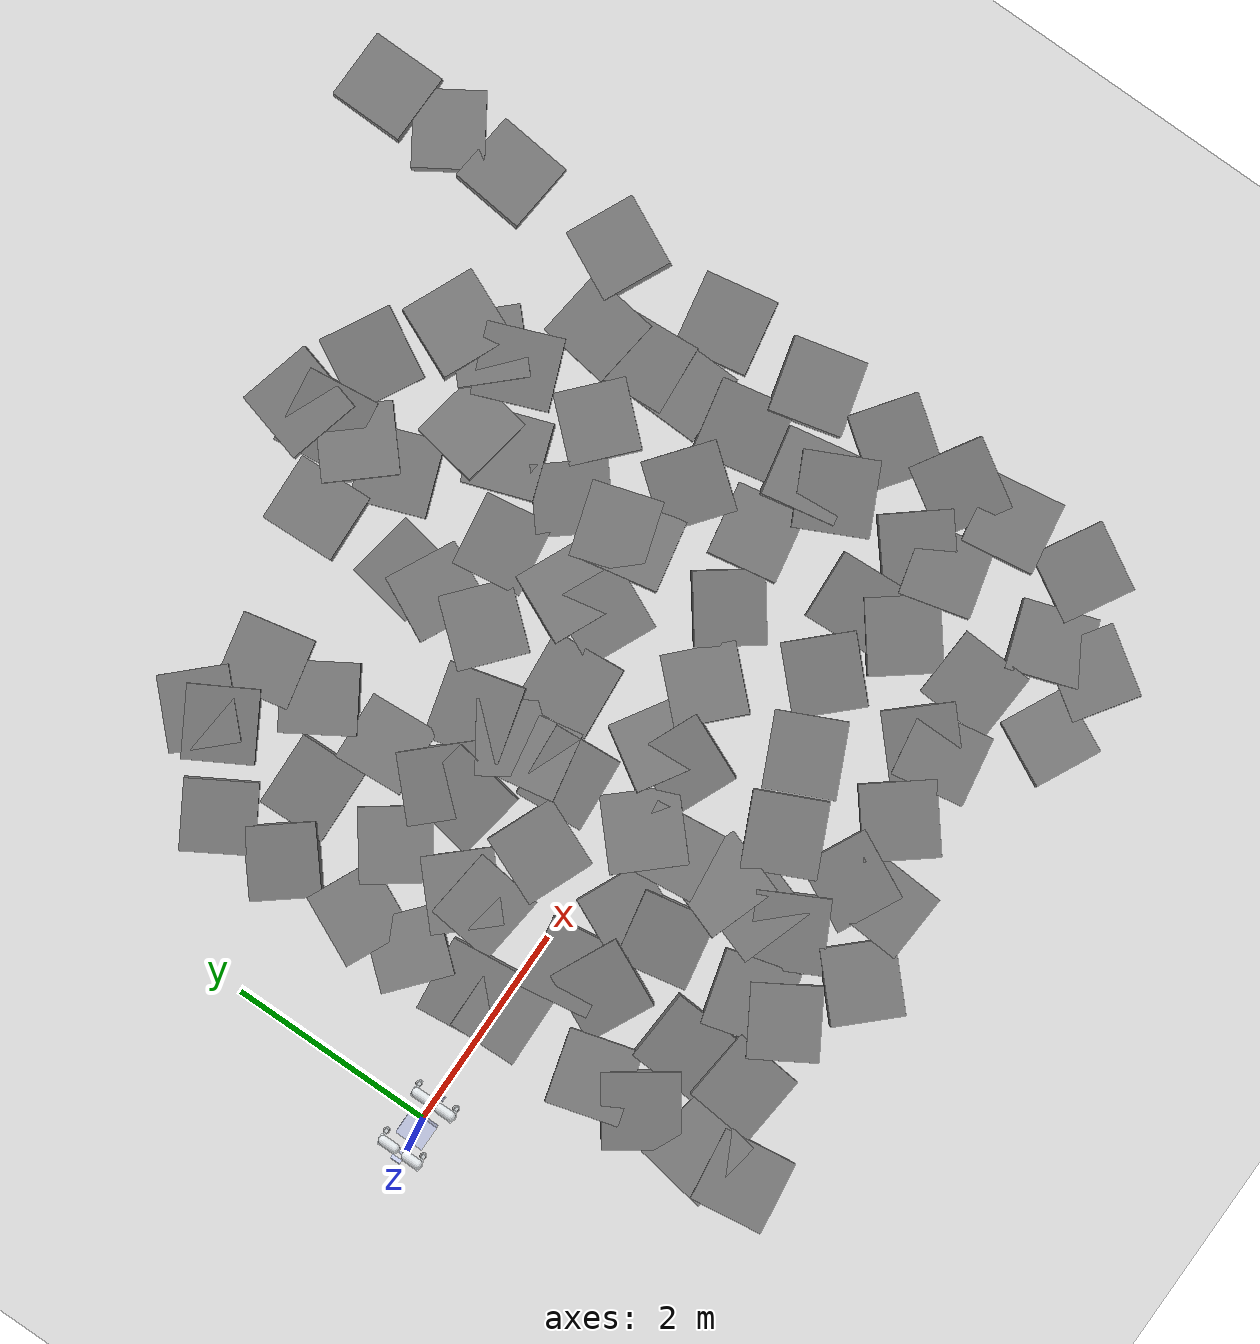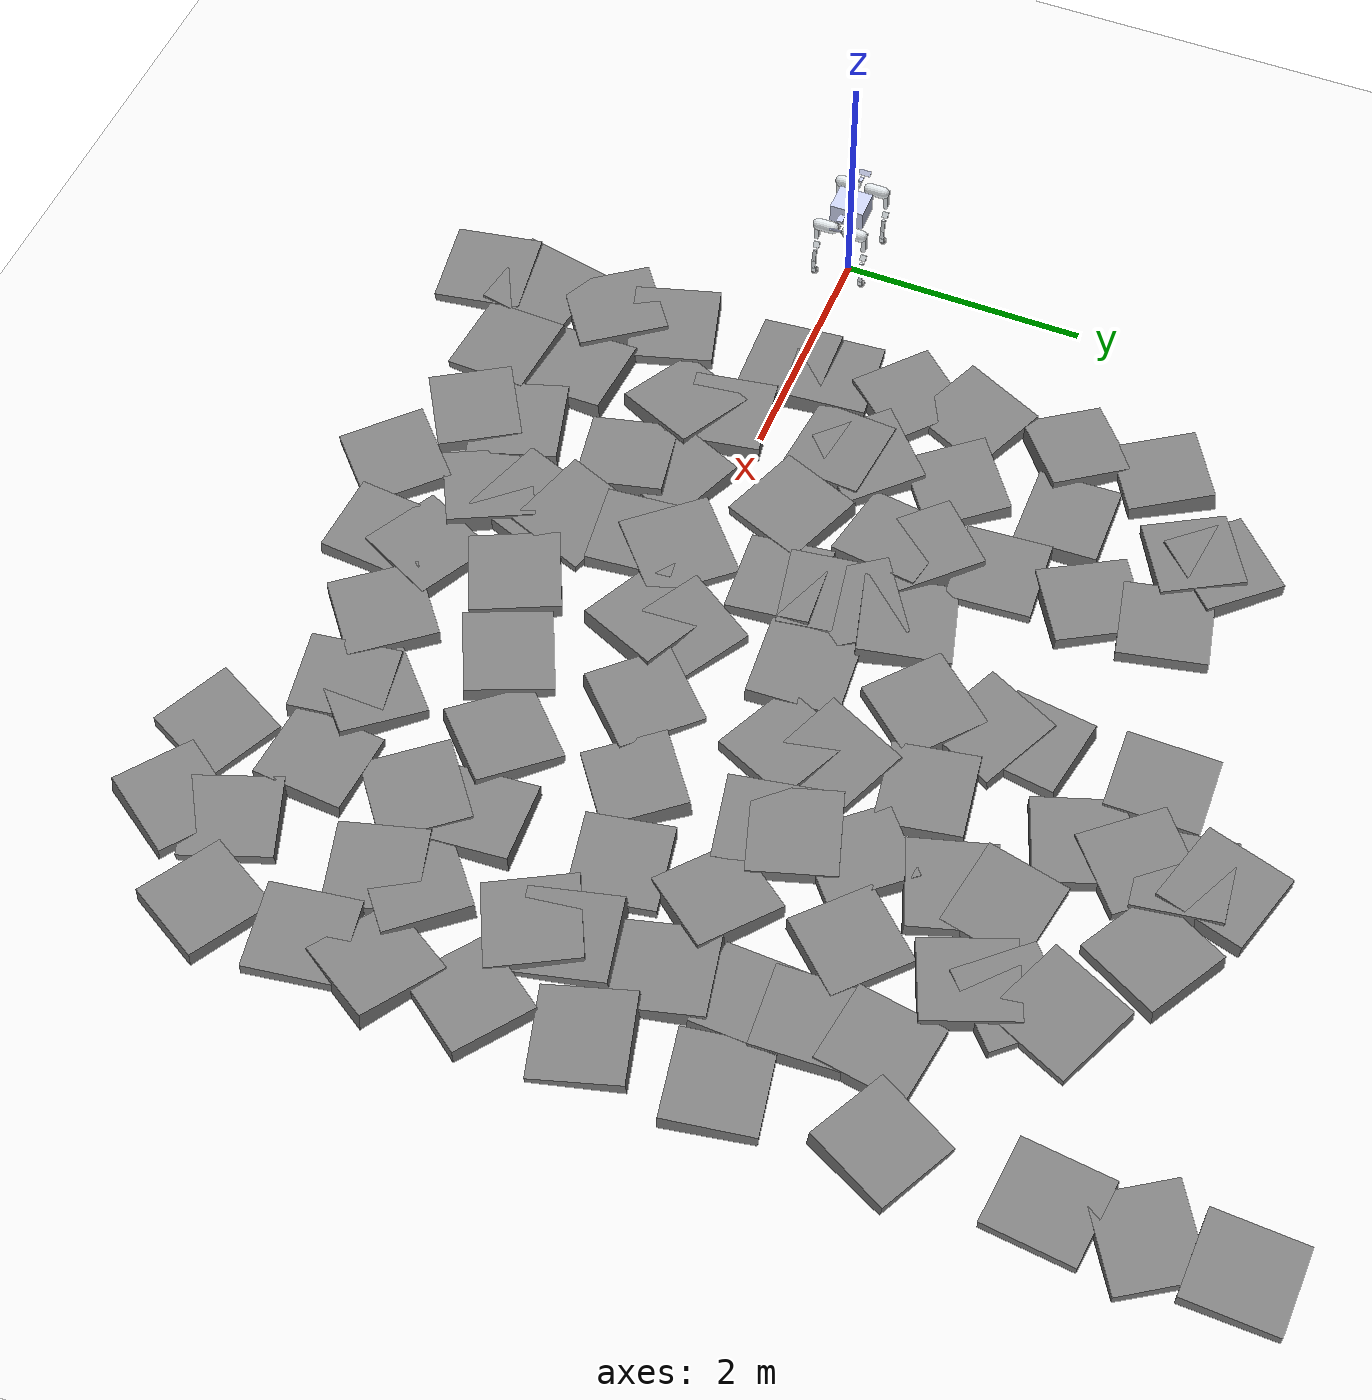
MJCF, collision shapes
<mujoco model="a2_random_boxes">
      <include file="a2.xml"/>

      <statistic center="0 0 0.1" extent="0.8"/>

      <visual>
            <headlight diffuse="0.4 0.4 0.4" ambient="0.25 0.25 0.25" specular="0.25 0.25 0.25"/>
            <rgba haze="0.99 0.99 0.99 1"/>
            <global azimuth="-130" elevation="-20"/>
      </visual>
      <asset>
            <texture
                  type="skybox"
                  builtin="gradient"
                  rgb1="0.99 0.99 0.99"
                  rgb2="0.99 0.99 0.99"
                  width="512"
                  height="3072"
            />
            <texture
                  type="2d"
                  name="groundplane"
                  builtin="checker"
                  mark="edge"
                  rgb1="0.93 0.93 0.93"
                  rgb2="0.93 0.93 0.93"
                  markrgb="0 0 0"
                  width="250"
                  height="250"
            />
            <material name="groundplane" texture="groundplane" texuniform="true" texrepeat="5 5" reflectance="0.0"/>
      </asset>

      <worldbody>
            <light pos="0 0 5.0" dir="0 0 -1" directional="true" castshadow="false"/>

            <geom name="floor" size="0 0 0.05" type="plane" material="groundplane"/>

            <geom size="0.354678 0.358708 0.0896548" pos="1.2 -2.71166 0.02" quat="0.0652341 -0.0319302 0.0254488 -0.997034" type="box"/>
            <geom size="0.356488 0.365869 0.0788364" pos="1.2 -2.21978 0.02" quat="0.759952 -0.0193772 0.0245563 0.649226" type="box"/>
            <geom size="0.364622 0.35751 0.0906182" pos="1.2 -1.58577 0.02" quat="0.458906 -0.00516719 -0.0375923 0.887674" type="box"/>
            <geom size="0.354122 0.35046 0.0929774" pos="1.2 -1.06653 0.02" quat="0.990294 0.00586796 0.0316036 0.135219" type="box"/>
            <geom size="0.335666 0.343025 0.0812434" pos="1.2 -0.047247 0.02" quat="0.699206 0.0552936 -0.00835086 0.71273" type="box"/>
            <geom size="0.339463 0.36249 0.0864424" pos="1.2 0.317769 0.02" quat="0.745624 0.00539253 -0.0321707 -0.665567" type="box"/>
            <geom size="0.346239 0.335771 0.0967117" pos="1.2 0.974073 0.02" quat="0.938524 -0.0367319 0.00108768 -0.343253" type="box"/>
            <geom size="0.361414 0.341298 0.0918175" pos="1.2 1.53126 0.02" quat="0.843035 0.0321216 0.024535 0.536338" type="box"/>
            <geom size="0.335286 0.343191 0.0859845" pos="1.2 2.36775 0.02" quat="0.902709 0.00500436 -0.053257 -0.426913" type="box"/>
            <geom size="0.344622 0.334008 0.0979981" pos="1.2 3.08121 0.02" quat="0.867245 0.041568 0.0197942 -0.495747" type="box"/>
            <geom size="0.353424 0.341678 0.0853316" pos="1.9 -2.23449 0.02" quat="0.0506356 0.0172853 -0.0483532 0.997396" type="box"/>
            <geom size="0.34913 0.342748 0.0801555" pos="1.9 -1.59372 0.02" quat="0.998266 0.0473363 -0.017491 -0.0302989" type="box"/>
            <geom size="0.34364 0.350693 0.0913967" pos="1.9 -0.675116 0.02" quat="0.974087 0.0249417 -0.0498964 -0.219185" type="box"/>
            <geom size="0.353011 0.333798 0.0864206" pos="1.9 -0.315923 0.02" quat="0.996769 0.00784916 -0.019476 0.0775293" type="box"/>
            <geom size="0.334267 0.344324 0.0811139" pos="1.9 0.636574 0.02" quat="0.663122 0.00759046 0.0495771 -0.746829" type="box"/>
            <geom size="0.336241 0.358561 0.0890266" pos="1.9 0.885202 0.02" quat="0.40212 0.0362004 -0.00519903 0.914856" type="box"/>
            <geom size="0.341201 0.351484 0.0837107" pos="1.9 1.61867 0.02" quat="0.891391 0.00850887 0.0430055 -0.45111" type="box"/>
            <geom size="0.33302 0.366726 0.091285" pos="1.9 2.52752 0.02" quat="0.716961 0.025214 -0.0159079 -0.696475" type="box"/>
            <geom size="0.337699 0.347496 0.0939288" pos="1.9 3.54656 0.02" quat="0.50233 -0.0146459 -0.0372062 0.863751" type="box"/>
            <geom size="0.335654 0.360502 0.0911121" pos="1.9 3.78412 0.02" quat="0.920172 -0.00357184 -0.0312743 -0.390248" type="box"/>
            <geom size="0.333574 0.348359 0.0950439" pos="2.6 -2.20095 0.02" quat="0.492231 0.0128201 -0.000669289 0.87037" type="box"/>
            <geom size="0.359895 0.362198 0.0919442" pos="2.6 -1.82491 0.02" quat="0.990756 0.0263184 0.0151926 0.13221" type="box"/>
            <geom size="0.348548 0.350459 0.089338" pos="2.6 -0.882231 0.02" quat="0.994556 0.0372519 -0.0291963 0.0928359" type="box"/>
            <geom size="0.348484 0.347091 0.0813035" pos="2.6 -0.476281 0.02" quat="0.213481 0.0361536 -0.0243802 0.975973" type="box"/>
            <geom size="0.352582 0.342784 0.093094" pos="2.6 0.508585 0.02" quat="0.831823 0.0335048 0.00443074 0.554011" type="box"/>
            <geom size="0.34627 0.362757 0.0871507" pos="2.6 1.35291 0.02" quat="0.0845878 -0.0348768 -0.0213519 0.995577" type="box"/>
            <geom size="0.339962 0.36385 0.0998801" pos="2.6 1.60211 0.02" quat="0.370094 0.0271889 0.0305026 -0.928095" type="box"/>
            <geom size="0.338962 0.334916 0.0843823" pos="2.6 2.20558 0.02" quat="0.682859 0.031337 0.0272987 0.729367" type="box"/>
            <geom size="0.333355 0.362489 0.0847502" pos="2.6 2.94372 0.02" quat="0.275021 -0.00811829 -0.0240645 -0.961103" type="box"/>
            <geom size="0.352068 0.336788 0.0870109" pos="2.6 3.54017 0.02" quat="0.77751 -0.00483518 0.00535218 -0.628829" type="box"/>
            <geom size="0.360265 0.34693 0.082794" pos="3.3 -2.57122 0.02" quat="0.929187 0.029074 0.0189687 0.367977" type="box"/>
            <geom size="0.354015 0.345381 0.0963107" pos="3.3 -1.77017 0.02" quat="0.237504 0.0342253 -0.00473834 -0.970772" type="box"/>
            <geom size="0.365348 0.357255 0.0845119" pos="3.3 -1.37691 0.02" quat="0.986766 -0.0379353 0.00187736 -0.157638" type="box"/>
            <geom size="0.334136 0.365843 0.0975329" pos="3.3 -1.03014 0.02" quat="0.812501 -0.000369101 0.0567499 0.580191" type="box"/>
            <geom size="0.336489 0.345521 0.0955185" pos="3.3 -0.492389 0.02" quat="0.998053 -0.0186523 0.0127422 0.0581372" type="box"/>
            <geom size="0.363931 0.365425 0.0871527" pos="3.3 -0.162213 0.02" quat="0.93154 -0.0240255 0.0332841 0.361315" type="box"/>
            <geom size="0.335544 0.359939 0.0854125" pos="3.3 0.683015 0.02" quat="0.731599 0.0319146 0.0219907 -0.680632" type="box"/>
            <geom size="0.334482 0.342912 0.0938826" pos="3.3 1.0608 0.02" quat="0.994675 -0.0337491 0.0272725 0.093481" type="box"/>
            <geom size="0.335392 0.349373 0.0903187" pos="3.3 1.30254 0.02" quat="0.473372 0.0352887 0.00328001 0.88015" type="box"/>
            <geom size="0.366218 0.366639 0.0907957" pos="3.3 1.71047 0.02" quat="0.990801 -0.0411533 -0.0209012 0.127209" type="box"/>
            <geom size="0.337514 0.356996 0.0800177" pos="4 -2.35049 0.02" quat="0.99926 -0.0242953 0.0017573 -0.0297516" type="box"/>
            <geom size="0.35355 0.335905 0.0850661" pos="4 -1.96591 0.02" quat="0.528026 0.0159756 -0.0160628 -0.848926" type="box"/>
            <geom size="0.354043 0.363543 0.0900548" pos="4 -1.23044 0.02" quat="0.843119 0.010908 -0.00635495 -0.537578" type="box"/>
            <geom size="0.344493 0.337035 0.0932492" pos="4 -0.127273 0.02" quat="0.549308 0.0333683 -0.0301667 -0.834409" type="box"/>
            <geom size="0.332842 0.340403 0.0816387" pos="4 0.189606 0.02" quat="0.872441 0.0155629 0.0556251 0.485294" type="box"/>
            <geom size="0.359487 0.358148 0.0806559" pos="4 1.14433 0.02" quat="0.67717 -0.0297407 0.00803749 0.735182" type="box"/>
            <geom size="0.342038 0.352328 0.0891775" pos="4 2.10071 0.02" quat="0.346148 0.00751983 0.00326024 0.938144" type="box"/>
            <geom size="0.333806 0.356259 0.0891892" pos="4 2.62228 0.02" quat="0.524652 -0.0112595 0.0400123 -0.850301" type="box"/>
            <geom size="0.334875 0.333807 0.0909809" pos="4 2.97396 0.02" quat="0.090362 0.0200632 -0.0358422 0.995062" type="box"/>
            <geom size="0.333687 0.366864 0.0866356" pos="4 3.94708 0.02" quat="0.020248 -0.00811981 -0.0327082 -0.999227" type="box"/>
            <geom size="0.355994 0.357222 0.0974128" pos="4.7 -2.01145 0.02" quat="0.943493 0.00397657 -0.00466918 0.331334" type="box"/>
            <geom size="0.363729 0.343319 0.0817165" pos="4.7 -0.9726 0.02" quat="0.216405 0.0080518 -0.0239138 -0.975977" type="box"/>
            <geom size="0.351307 0.341265 0.0800383" pos="4.7 0.137803 0.02" quat="0.926282 -0.0499612 -0.0150184 -0.373202" type="box"/>
            <geom size="0.352663 0.34269 0.0930078" pos="4.7 1.26632 0.02" quat="0.976574 0.0135466 -0.00261269 -0.214737" type="box"/>
            <geom size="0.353988 0.36687 0.0943904" pos="4.7 1.63937 0.02" quat="0.541575 -0.0444384 0.0297327 -0.83895" type="box"/>
            <geom size="0.336508 0.360426 0.0929448" pos="4.7 2.37891 0.02" quat="0.653129 0.0163423 -0.0138705 0.756943" type="box"/>
            <geom size="0.359172 0.361896 0.0810459" pos="4.7 3.54596 0.02" quat="0.57204 -0.0113243 0.00919481 0.820096" type="box"/>
            <geom size="0.360775 0.342092 0.0848551" pos="4.7 3.98983 0.02" quat="0.910203 -0.0353399 0.013891 -0.412417" type="box"/>
            <geom size="0.34632 0.366458 0.0847792" pos="4.7 4.3363 0.02" quat="0.747172 0.0505765 -0.00886806 -0.662644" type="box"/>
            <geom size="0.360122 0.364323 0.097085" pos="4.7 4.62611 0.02" quat="0.606931 -0.00244147 -0.028534 -0.794239" type="box"/>
            <geom size="0.339307 0.354053 0.0991393" pos="5.4 -1.99562 0.02" quat="0.0861855 0.00790942 -0.0184931 -0.996076" type="box"/>
            <geom size="0.342828 0.338917 0.0791816" pos="5.4 -1.78216 0.02" quat="0.913638 0.00354878 -0.0520292 -0.40317" type="box"/>
            <geom size="0.350327 0.349284 0.0793987" pos="5.4 -0.696238 0.02" quat="0.925502 -0.0389156 -0.0339425 0.375207" type="box"/>
            <geom size="0.346925 0.33384 0.0805184" pos="5.4 0.365056 0.02" quat="0.313966 0.0162675 0.0493532 -0.948011" type="box"/>
            <geom size="0.364396 0.346531 0.0850257" pos="5.4 1.40655 0.02" quat="0.634414 0.0127202 0.0339293 0.772143" type="box"/>
            <geom size="0.362053 0.340205 0.0964936" pos="5.4 1.61171 0.02" quat="0.988713 0.00190482 0.0114558 0.149368" type="box"/>
            <geom size="0.333366 0.356651 0.0825036" pos="5.4 2.10753 0.02" quat="0.94012 0.0255222 -0.0136144 0.339614" type="box"/>
            <geom size="0.343799 0.366345 0.0830142" pos="5.4 2.81237 0.02" quat="0.814463 -0.035342 -0.0234585 -0.578663" type="box"/>
            <geom size="0.358491 0.332685 0.0807223" pos="5.4 3.21079 0.02" quat="0.99434 -0.0406809 0.0422377 -0.0885895" type="box"/>
            <geom size="0.365167 0.355411 0.0960704" pos="5.4 4.3156 0.02" quat="0.507703 0.0253923 0.0136717 -0.86105" type="box"/>
            <geom size="0.332648 0.335073 0.0816439" pos="6.1 -2.70408 0.02" quat="0.227359 0.0292626 0.0385252 0.972608" type="box"/>
            <geom size="0.346563 0.358086 0.0929296" pos="6.1 -1.87002 0.02" quat="0.998955 -0.0256111 -0.0265803 -0.0269456" type="box"/>
            <geom size="0.358907 0.347799 0.0875046" pos="6.1 -1.07574 0.02" quat="0.945481 0.0252224 -0.0048367 0.324662" type="box"/>
            <geom size="0.342332 0.358486 0.0852868" pos="6.1 -0.579977 0.02" quat="0.998891 0.0264887 -0.0266282 0.0283753" type="box"/>
            <geom size="0.339346 0.351711 0.0833436" pos="6.1 0.544706 0.02" quat="0.64033 0.0190141 0.0204006 0.767594" type="box"/>
            <geom size="0.357607 0.337918 0.0945795" pos="6.1 1.2923 0.02" quat="0.327698 -0.0414204 -0.018753 0.943688" type="box"/>
            <geom size="0.3403 0.339945 0.0924872" pos="6.1 2.30616 0.02" quat="0.405146 -0.0125868 -0.0201492 -0.913943" type="box"/>
            <geom size="0.341783 0.36692 0.0978317" pos="6.1 3.18711 0.02" quat="0.982501 -0.00200289 -0.0171298 0.185456" type="box"/>
            <geom size="0.339121 0.334077 0.0790374" pos="6.1 3.50458 0.02" quat="0.368136 -0.0305345 -0.0294672 -0.928803" type="box"/>
            <geom size="0.365643 0.366709 0.0985355" pos="6.1 3.85607 0.02" quat="0.204082 0.04858 0.0200244 0.977543" type="box"/>
            <geom size="0.355135 0.333523 0.0952333" pos="6.8 -2.6874 0.02" quat="0.4683 -0.0250365 -0.0572662 -0.881356" type="box"/>
            <geom size="0.333364 0.361002 0.0841948" pos="6.8 -2.22898 0.02" quat="0.161992 -0.0377871 0.0191606 -0.985882" type="box"/>
            <geom size="0.345343 0.344725 0.0860352" pos="6.8 -1.06201 0.02" quat="0.12633 -0.0208251 0.0171577 -0.991621" type="box"/>
            <geom size="0.363884 0.345565 0.0929311" pos="6.8 -0.750571 0.02" quat="0.337723 0.0228113 0.0281954 -0.940547" type="box"/>
            <geom size="0.360906 0.359784 0.0981111" pos="6.8 0.163579 0.02" quat="0.52928 0.0239292 -0.0358347 0.847352" type="box"/>
            <geom size="0.340803 0.3607 0.0988377" pos="6.8 0.440137 0.02" quat="0.992844 0.0431845 0.0542106 0.097251" type="box"/>
            <geom size="0.36404 0.360975 0.0866045" pos="6.8 1.18428 0.02" quat="0.993573 0.0484608 -0.00649486 0.102088" type="box"/>
            <geom size="0.34801 0.3334 0.0868067" pos="6.8 1.82124 0.02" quat="0.99985 -0.00808118 -0.00936224 -0.0121525" type="box"/>
            <geom size="0.341958 0.366414 0.0916521" pos="6.8 2.27429 0.02" quat="0.0336503 0.0156748 -0.019894 -0.999113" type="box"/>
            <geom size="0.34048 0.353592 0.0839161" pos="6.8 2.78706 0.02" quat="0.0676876 -0.0148025 0.024145 0.997305" type="box"/>
            <geom size="0.345322 0.353147 0.0953584" pos="7.5 -2.08615 0.02" quat="0.864319 -0.0154579 -0.00875528 0.50263" type="box"/>
            <geom size="0.348504 0.355258 0.0897459" pos="7.5 -1.30978 0.02" quat="0.996714 -0.00852771 0.0211766 0.0777161" type="box"/>
            <geom size="0.360977 0.352154 0.0919536" pos="7.5 -0.734571 0.02" quat="0.274492 -0.0480006 -0.0152596 0.960269" type="box"/>
            <geom size="0.339904 0.361235 0.0812563" pos="7.5 -0.0101444 0.02" quat="0.95015 0.0254238 -0.0100935 -0.310591" type="box"/>
            <geom size="0.363075 0.355135 0.0859519" pos="7.5 0.854535 0.02" quat="0.125317 -0.0421702 0.0438916 -0.990248" type="box"/>
            <geom size="0.352644 0.364296 0.094377" pos="7.5 1.85761 0.02" quat="0.640287 -0.0170853 0.0118916 0.767853" type="box"/>
            <geom size="0.358622 0.346047 0.0915758" pos="7.5 3.04778 0.02" quat="0.846414 -0.0481847 0.0274869 0.529628" type="box"/>
            <geom size="0.362359 0.344544 0.0931228" pos="7.5 4.24261 0.02" quat="0.740763 0.0281308 0.0334315 0.670345" type="box"/>
            <geom size="0.365172 0.333489 0.0885586" pos="7.5 4.92962 0.02" quat="0.282147 -0.0375309 0.00560447 -0.958621" type="box"/>
            <geom size="0.34329 0.364698 0.0939696" pos="7.5 5.60445 0.02" quat="0.99929 -0.0220652 0.0294936 -0.00789042" type="box"/>
      </worldbody>
</mujoco>

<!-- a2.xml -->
<mujoco model="a2">
  <compiler angle="radian"/>
  <option gravity="0 0 -9.81"/>

  <default>
      <default class="hip_joint">
        <joint damping="0.2" armature="0.03" frictionloss="1.0" />
      </default>
      <default class="thigh_joint">
        <joint damping="0.2" armature="0.03" frictionloss="1.0" />
      </default>
      <default class="calf_joint">
        <joint damping="1.0" armature="0.03" frictionloss="3.0" />
      </default>
      <default class="collision">
        <geom group="3" priority="1" condim="6"/>
      </default>
      <default class="visual">
          <geom type="mesh" contype="0" conaffinity="0" group="2"/>
      </default>

      <default class="foot">
          <geom group="3" priority="1" condim="6" friction="1.3 0.01 0.01"/>
      </default>
  </default>

  <asset>
    <mesh name="base_link" file="meshes/base_link.STL"/>
    <mesh name="left_front_Link1" file="meshes/left_front_Link1.STL"/>
    <mesh name="left_front_Link2" file="meshes/left_front_Link2.STL"/>
    <mesh name="left_front_Link3" file="meshes/left_front_Link3.STL"/>
    <mesh name="left_front_Link4" file="meshes/left_front_Link4.STL"/>
    <mesh name="left_hind_Link1" file="meshes/left_hind_Link1.STL"/>
    <mesh name="left_hind_Link2" file="meshes/left_hind_Link2.STL"/>
    <mesh name="left_hind_Link3" file="meshes/left_hind_Link3.STL"/>
    <mesh name="left_hind_Link4" file="meshes/left_hind_Link4.STL"/>
    <mesh name="right_front_Link1" file="meshes/right_front_Link1.STL"/>
    <mesh name="right_front_Link2" file="meshes/right_front_Link2.STL"/>
    <mesh name="right_front_Link3" file="meshes/right_front_Link3.STL"/>
    <mesh name="right_front_Link4" file="meshes/right_front_Link4.STL"/>
    <mesh name="right_hind_Link1" file="meshes/right_hind_Link1.STL"/>
    <mesh name="right_hind_Link2" file="meshes/right_hind_Link2.STL"/>
    <mesh name="right_hind_Link3" file="meshes/right_hind_Link3.STL"/>
    <mesh name="right_hind_Link4" file="meshes/right_hind_Link4.STL"/>
  </asset>

  <worldbody>
    <body name="base" pos="0 0 0.7">
      <inertial pos="0.00698259 -0.000712858 0.0128895" quat="-0.00152907 0.699583 -0.00252986 0.714546" mass="19.651" diaginertia="0.472398 0.407723 0.141627"/>
      <freejoint/>
      <site name="imu" pos="-0.0 0 0.0" />
      <geom class="visual" type="mesh" contype="0" conaffinity="0" group="1" density="0" rgba="0.792157 0.819608 0.933333 1" mesh="base_link"/>
      <geom class="collision" size="0.12 0.14 0.085" pos="0 0 0.007" type="box" rgba="0.792157 0.819608 0.933333 1"/>
      <geom class="collision" size="0.04 0.025 0.01" pos="0.25 0 0.119" type="box" rgba="0.792157 0.819608 0.933333 1"/>
      <geom class="collision" size="0.025 0.015 0.008" pos="-0.22 0 0.119" quat="0.999888 0 -0.0149994 0" type="box" rgba="0.792157 0.819608 0.933333 1"/>
      <geom class="collision" size="0.03 0.05 0.005" pos="0.365 0 0.1" quat="0.939373 0 -0.342898 0" type="box" rgba="0.792157 0.819608 0.933333 1"/>
      <geom class="collision" size="0.0225 0.05 0.005" pos="-0.31 0 0.112" quat="0.939373 0 0.342898 0" type="box" rgba="0.792157 0.819608 0.933333 1"/>

      <body name="FL_hip" pos="0.25944 0.075113 0">
        <inertial pos="-0.002408 -0.01622 0.000239" quat="0.66751 0.421649 0.565191 0.239168" mass="1.62" diaginertia="0.0016644 0.00161602 0.00145995"/>
        <joint name="FL_hip_joint" pos="0 0 0" axis="1 0 0" range="-1.01 1.01" actuatorfrcrange="-120 120" armature="0.0267" frictionloss="1.6840" class="hip_joint"/>
        <geom class="visual" type="mesh" contype="0" conaffinity="0" group="1" density="0" rgba="0.898039 0.917647 0.929412 1" mesh="left_front_Link1"/>

        <body name="FL_thigh" pos="0 0.12779 0">
          <inertial pos="-0.003268 -0.03111 -0.053896" quat="0.993045 0.11348 0.0231928 0.0211279" mass="3.079" diaginertia="0.0293395 0.0280448 0.00383794"/>
          <joint name="FL_thigh_joint" pos="0 0 0" axis="0 1 0" range="-2.34 3.15" actuatorfrcrange="-120 120" armature="0.0595" frictionloss="1.7505" class="thigh_joint"/>
          <geom class="visual" type="mesh" contype="0" conaffinity="0" group="1" density="0" rgba="0.898039 0.917647 0.929412 1" mesh="left_front_Link2"/>
          <geom class="collision" size="0.048 0.06" pos="0 -0.08 0" quat="0.707035 0.707179 0 0" type="capsule" rgba="0.898039 0.917647 0.929412 1"/>
          <geom class="collision" size="0.0275 0.018 0.085" pos="-0.025 0 -0.09" quat="0.999988 0 0.00499998 0" type="box" rgba="0.898039 0.917647 0.929412 1"/>
          <geom class="collision" size="0.0085 0.025 0.025" pos="-0.022 0 -0.27" quat="0.930508 0 -0.366273 0" type="box" rgba="0.898039 0.917647 0.929412 1"/>

          <body name="FL_calf" pos="0 0 -0.275">
            <inertial pos="0.0102138 -1.99312e-05 -0.136496" quat="0.706884 -0.0119077 -0.0120568 0.707127" mass="0.407" diaginertia="0.00511119 0.00502314 0.000177746"/>
            <joint name="FL_calf_joint" pos="0 0 0" axis="0 1 0" range="-2.77 -0.54" actuatorfrcrange="-180 180" armature="0.0684" frictionloss="6.0000" class="calf_joint"/>
            <geom class="visual" type="mesh" contype="0" conaffinity="0" group="1" density="0" rgba="0.898039 0.917647 0.929412 1" mesh="left_front_Link3"/>
            <geom class="collision" size="0.012 0.015 0.05" pos="0.018 0 -0.08" quat="0.992809 0 -0.119712 0" type="box" rgba="0.898039 0.917647 0.929412 1"/>
            <geom class="collision" size="0.011 0.015 0.04" pos="0.033 0 -0.17" quat="0.999888 0 -0.0149994 0" type="box" rgba="0.898039 0.917647 0.929412 1"/>
            <geom class="collision" size="0.01 0.018 0.03" pos="0.029 0 -0.236" quat="0.995004 0 0.0998334 0" type="box" rgba="0.898039 0.917647 0.929412 1"/>
            <geom class="collision" size="0.005 0.018 0.03" pos="0.008 0 -0.23" quat="0.942755 0 0.333487 0" type="box" rgba="0.898039 0.917647 0.929412 1"/>
            <geom pos="0 0 -0.275" quat="1 0 0 0" type="mesh" contype="0" conaffinity="0" group="1" density="0" rgba="0.698039 0.698039 0.698039 1" mesh="left_front_Link4"/>
            <!--geom size="0.032" pos="0 0 -0.275" rgba="0.698039 0.698039 0.698039 1" class="foot"/-->

            <body name="FL_foot" pos="0 0 -0.275">
                <!-- FL_foot only collision -->
                <geom name="FL" size="0.032" rgba="0.698039 0.698039 0.698039 1" class="foot"/>
            </body>

          </body>
        </body>
      </body>

      <body name="FR_hip" pos="0.25944 -0.075113 0">
        <inertial pos="-0.002465 0.01622 0.000318" quat="0.244263 0.553086 0.449878 0.657299" mass="1.62" diaginertia="0.0016672 0.00160755 0.00146457"/>
        <joint name="FR_hip_joint" pos="0 0 0" axis="1 0 0" range="-1.01 1.01" actuatorfrcrange="-120 120" armature="0.0408" frictionloss="1.8241" class="hip_joint"/>
        <geom class="visual" type="mesh" contype="0" conaffinity="0" group="1" density="0" rgba="0.898039 0.917647 0.929412 1" mesh="right_front_Link1"/>

        <body name="FR_thigh" pos="0 -0.12779 0">
          <inertial pos="-0.003256 0.031125 -0.053921" quat="0.993054 -0.113587 0.0234158 -0.0198545" mass="3.077" diaginertia="0.029323 0.028038 0.00383842"/>
          <joint name="FR_thigh_joint" pos="0 0 0" axis="0 1 0" range="-2.34 3.15" actuatorfrcrange="-120 120" armature="0.0467" frictionloss="1.8787" class="thigh_joint"/>
          <geom class="visual" type="mesh" contype="0" conaffinity="0" group="1" density="0" rgba="0.898039 0.917647 0.929412 1" mesh="right_front_Link2"/>
          <geom class="collision" size="0.048 0.06" pos="0 0.08 0" quat="0.707035 0.707179 0 0" type="capsule" rgba="0.898039 0.917647 0.929412 1"/>
          <geom class="collision" size="0.0275 0.018 0.085" pos="-0.025 0 -0.09" quat="0.999988 0 0.00499998 0" type="box" rgba="0.898039 0.917647 0.929412 1"/>
          <geom class="collision" size="0.0085 0.025 0.025" pos="-0.022 0 -0.27" quat="0.930508 0 -0.366273 0" type="box" rgba="0.898039 0.917647 0.929412 1"/>

          <body name="FR_calf" pos="0 0 -0.275">
            <inertial pos="0.0102138 1.55479e-05 -0.136496" quat="0.707151 -0.0120743 -0.0118903 0.706859" mass="0.407" diaginertia="0.00511119 0.00502314 0.000177746"/>
            <joint name="FR_calf_joint" pos="0 0 0" axis="0 1 0" range="-2.77 -0.54" actuatorfrcrange="-180 180" armature="0.0469" frictionloss="6.0000" class="calf_joint"/>
            <geom class="visual" type="mesh" contype="0" conaffinity="0" group="1" density="0" rgba="0.898039 0.917647 0.929412 1" mesh="right_front_Link3"/>
            <geom class="collision" size="0.012 0.015 0.05" pos="0.018 0 -0.08" quat="0.992809 0 -0.119712 0" type="box" rgba="0.898039 0.917647 0.929412 1"/>
            <geom class="collision" size="0.011 0.015 0.04" pos="0.033 0 -0.17" quat="0.999888 0 -0.0149994 0" type="box" rgba="0.898039 0.917647 0.929412 1"/>
            <geom class="collision" size="0.01 0.018 0.03" pos="0.029 0 -0.236" quat="0.995004 0 0.0998334 0" type="box" rgba="0.898039 0.917647 0.929412 1"/>
            <geom class="collision" size="0.005 0.018 0.03" pos="0.008 0 -0.23" quat="0.942755 0 0.333487 0" type="box" rgba="0.898039 0.917647 0.929412 1"/>
            <geom pos="0 0 -0.275" quat="1 0 0 0" type="mesh" contype="0" conaffinity="0" group="1" density="0" rgba="0.698039 0.698039 0.698039 1" mesh="right_front_Link4"/>
            <!--geom size="0.032" pos="0 0 -0.275" rgba="0.698039 0.698039 0.698039 1" class="foot"/-->

            <body name="FR_foot" pos="0 0 -0.275">
                <!-- FR_foot only collision -->
                <geom name="FR" size="0.032" rgba="0.698039 0.698039 0.698039 1" class="foot"/>
            </body>

          </body>
        </body>
      </body>

      <body name="RL_hip" pos="-0.25944 0.075113 0">
        <inertial pos="0.00327 -0.01622 -9.7e-05" quat="0.358494 0.383537 0.580824 0.622113" mass="1.62" diaginertia="0.00167848 0.00163116 0.00141504"/>
        <joint name="RL_hip_joint" pos="0 0 0" axis="1 0 0" range="-1.01 1.01" actuatorfrcrange="-120 120" armature="0.0350" frictionloss="2.2674" class="hip_joint"/>
        <geom type="mesh" contype="0" conaffinity="0" group="1" density="0" rgba="0.898039 0.917647 0.929412 1" mesh="left_hind_Link1"/>

        <body name="RL_thigh" pos="0 0.12779 0">
          <inertial pos="-0.003268 -0.03111 -0.053896" quat="0.993045 0.11348 0.0231928 0.0211279" mass="3.079" diaginertia="0.0293395 0.0280448 0.00383794"/>
          <joint name="RL_thigh_joint" pos="0 0 0" axis="0 1 0" range="-1.56 3.94" actuatorfrcrange="-120 120" armature="0.0438" frictionloss="1.9499" class="thigh_joint"/>
          <geom class="visual" type="mesh" contype="0" conaffinity="0" group="1" density="0" rgba="0.898039 0.917647 0.929412 1" mesh="left_hind_Link2"/>
          <geom class="collision" size="0.048 0.06" pos="0 -0.08 0" quat="0.707035 0.707179 0 0" type="capsule" rgba="0.898039 0.917647 0.929412 1"/>
          <geom class="collision" size="0.0275 0.018 0.085" pos="-0.025 0 -0.09" quat="0.999988 0 0.00499998 0" type="box" rgba="0.898039 0.917647 0.929412 1"/>
          <geom class="collision" size="0.0085 0.025 0.025" pos="-0.022 0 -0.27" quat="0.930508 0 -0.366273 0" type="box" rgba="0.898039 0.917647 0.929412 1"/>

          <body name="RL_calf" pos="0 0 -0.275">
            <inertial pos="0.0102138 -1.99312e-05 -0.136496" quat="0.706884 -0.0119077 -0.0120568 0.707127" mass="0.407" diaginertia="0.00511119 0.00502314 0.000177746"/>
            <joint name="RL_calf_joint" pos="0 0 0" axis="0 1 0" range="-2.77 -0.54" actuatorfrcrange="-180 180" armature="0.0616" frictionloss="6.0000" class="calf_joint"/>
            <geom class="visual" type="mesh" contype="0" conaffinity="0" group="1" density="0" rgba="0.898039 0.917647 0.929412 1" mesh="left_hind_Link3"/>
            <geom class="collision" size="0.012 0.015 0.05" pos="0.018 0 -0.08" quat="0.992809 0 -0.119712 0" type="box" rgba="0.898039 0.917647 0.929412 1"/>
            <geom class="collision" size="0.011 0.015 0.04" pos="0.033 0 -0.17" quat="0.999888 0 -0.0149994 0" type="box" rgba="0.898039 0.917647 0.929412 1"/>
            <geom class="collision" size="0.01 0.018 0.03" pos="0.029 0 -0.236" quat="0.995004 0 0.0998334 0" type="box" rgba="0.898039 0.917647 0.929412 1"/>
            <geom class="collision" size="0.005 0.018 0.03" pos="0.008 0 -0.23" quat="0.942755 0 0.333487 0" type="box" rgba="0.898039 0.917647 0.929412 1"/>
            <geom pos="0 0 -0.275" quat="1 0 0 0" type="mesh" contype="0" conaffinity="0" group="1" density="0" rgba="0.698039 0.698039 0.698039 1" mesh="left_hind_Link4"/>
            <!--geom size="0.032" pos="0 0 -0.275" rgba="0.698039 0.698039 0.698039 1" class="foot"/-->

            <body name="RL_foot" pos="0 0 -0.275">
                <!-- RL_foot only collision -->
                <geom name="RL" size="0.032" rgba="0.698039 0.698039 0.698039 1" class="foot"/>
            </body>

          </body>
        </body>
      </body>

      <body name="RR_hip" pos="-0.25944 -0.075113 0">
        <inertial pos="0.00327 0.01622 -3.7e-05" quat="0.616206 0.585144 0.36648 0.378931" mass="1.62" diaginertia="0.00167769 0.00163476 0.00141225"/>
        <joint name="RR_hip_joint" pos="0 0 0" axis="1 0 0" range="-1.01 1.01" actuatorfrcrange="-120 120" armature="0.0271" frictionloss="2.0147" class="hip_joint"/>
        <geom class="visual" type="mesh" contype="0" conaffinity="0" group="1" density="0" rgba="0.898039 0.917647 0.929412 1" mesh="right_hind_Link1"/>

        <body name="RR_thigh" pos="0 -0.12779 0">
          <inertial pos="-0.003256 0.031125 -0.053921" quat="0.993054 -0.113587 0.0234158 -0.0198545" mass="3.077" diaginertia="0.029323 0.028038 0.00383842"/>
          <joint name="RR_thigh_joint" pos="0 0 0" axis="0 1 0" range="-1.56 3.94" actuatorfrcrange="-120 120" armature="0.0564" frictionloss="2.2178" class="thigh_joint"/>
          <geom class="visual" type="mesh" contype="0" conaffinity="0" group="1" density="0" rgba="0.898039 0.917647 0.929412 1" mesh="right_hind_Link2"/>
          <geom class="collision" size="0.048 0.06" pos="0 0.08 0" quat="0.707035 0.707179 0 0" type="capsule" rgba="0.898039 0.917647 0.929412 1"/>
          <geom class="collision" size="0.0275 0.018 0.085" pos="-0.025 0 -0.09" quat="0.999988 0 0.00499998 0" type="box" rgba="0.898039 0.917647 0.929412 1"/>
          <geom class="collision" size="0.0085 0.025 0.025" pos="-0.022 0 -0.27" quat="0.930508 0 -0.366273 0" type="box" rgba="0.898039 0.917647 0.929412 1"/>

          <body name="RR_calf" pos="0 0 -0.275">
            <inertial pos="0.0102138 1.55479e-05 -0.136496" quat="0.707151 -0.0120743 -0.0118903 0.706859" mass="0.407" diaginertia="0.00511119 0.00502314 0.000177746"/>
            <joint name="RR_calf_joint" pos="0 0 0" axis="0 1 0" range="-2.77 -0.54" actuatorfrcrange="-180 180" armature="0.0553" frictionloss="6.0000" class="calf_joint"/>
            <geom class="visual" type="mesh" contype="0" conaffinity="0" group="1" density="0" rgba="0.898039 0.917647 0.929412 1" mesh="right_hind_Link3"/>
            <geom class="collision" size="0.012 0.015 0.05" pos="0.018 0 -0.08" quat="0.992809 0 -0.119712 0" type="box" rgba="0.898039 0.917647 0.929412 1"/>
            <geom class="collision" size="0.011 0.015 0.04" pos="0.033 0 -0.17" quat="0.999888 0 -0.0149994 0" type="box" rgba="0.898039 0.917647 0.929412 1"/>
            <geom class="collision" size="0.01 0.018 0.03" pos="0.029 0 -0.236" quat="0.995004 0 0.0998334 0" type="box" rgba="0.898039 0.917647 0.929412 1"/>
            <geom class="collision" size="0.005 0.018 0.03" pos="0.008 0 -0.23" quat="0.942755 0 0.333487 0" type="box" rgba="0.898039 0.917647 0.929412 1"/>
            <geom pos="0 0 -0.275" quat="1 0 0 0" type="mesh" contype="0" conaffinity="0" group="1" density="0" rgba="0.698039 0.698039 0.698039 1" mesh="right_hind_Link4"/>
            <!--geom size="0.032" pos="0 0 -0.275" rgba="0.698039 0.698039 0.698039 1" class="foot"/-->

            <body name="RR_foot" pos="0 0 -0.275">
                <!-- RR_foot only collision -->
                <geom name="RR" size="0.032" rgba="0.698039 0.698039 0.698039 1" class="foot"/>
            </body>

          </body>
        </body>
      </body>

    </body>
  </worldbody>

  <actuator>
    <motor ctrlrange="-120 120"  name="FL_hip" joint="FL_hip_joint"/>
    <motor ctrlrange="-120 120"  name="FL_thigh" joint="FL_thigh_joint"/>
    <motor ctrlrange="-180 180" name="FL_calf" joint="FL_calf_joint"/>
    <motor ctrlrange="-120 120"  name="FR_hip" joint="FR_hip_joint"/>
    <motor ctrlrange="-120 120"  name="FR_thigh" joint="FR_thigh_joint"/>
    <motor ctrlrange="-180 180"  name="FR_calf" joint="FR_calf_joint"/>
    <motor ctrlrange="-120 120"  name="RL_hip" joint="RL_hip_joint"/>
    <motor ctrlrange="-120 120"  name="RL_thigh" joint="RL_thigh_joint"/>
    <motor ctrlrange="-180 180" name="RL_calf" joint="RL_calf_joint"/>
    <motor ctrlrange="-120 120"  name="RR_hip" joint="RR_hip_joint"/>
    <motor ctrlrange="-120 120"  name="RR_thigh" joint="RR_thigh_joint"/>
    <motor ctrlrange="-180 180" name="RR_calf" joint="RR_calf_joint"/>
  </actuator>

  <sensor>
    <accelerometer name="imu_acc" site="imu"/>
    <gyro name="imu_gyro" site="imu"/>
    <framepos name="imu_pos" objtype="site" objname="imu"/>
    <framequat name="imu_quat" objtype="site" objname="imu"/>

    <jointpos name="FL_hip_joint_pos" joint="FL_hip_joint"/>
    <jointpos name="FL_thigh_joint_pos" joint="FL_thigh_joint"/>
    <jointpos name="FL_calf_joint_pos" joint="FL_calf_joint"/>
    <jointpos name="FR_hip_joint_pos" joint="FR_hip_joint"/>
    <jointpos name="FR_thigh_joint_pos" joint="FR_thigh_joint"/>
    <jointpos name="FR_calf_joint_pos" joint="FR_calf_joint"/>
    <jointpos name="RL_hip_joint_pos" joint="RL_hip_joint"/>
    <jointpos name="RL_thigh_joint_pos" joint="RL_thigh_joint"/>
    <jointpos name="RL_calf_joint_pos" joint="RL_calf_joint"/>
    <jointpos name="RR_hip_joint_pos" joint="RR_hip_joint"/>
    <jointpos name="RR_thigh_joint_pos" joint="RR_thigh_joint"/>
    <jointpos name="RR_calf_joint_pos" joint="RR_calf_joint"/>
  </sensor>

  <keyframe>
      <key name="home" qpos="0 0 0.27 1 0 0 0 0 0.9 -1.8 0 0.9 -1.8 0 0.9 -1.8 0 0.9 -1.8"/>
      <key name="down" qpos="0 0 0.05 1 0 0 0 0.0 1.21 -2.794 0.0 1.21 -2.794 0.40 1.21 -2.794 -0.40 1.21 -2.794"/>
      <key name="sys_id_1" qpos="0 0 0.05 1 0 0 0 0.0 1.21 -2.5 0.0 1.21 -2.5 0.0 1.21 -2.5 0.0 1.21 -2.5"/>
      <key name="sys_id_2" qpos="0 0 0.05 1 0 0 0 0.6 0.5 -1.4 0.6 0.5 -1.4 0.6 0.5 -1.4 0.6 0.5 -1.4"/>
  </keyframe>

</mujoco>
